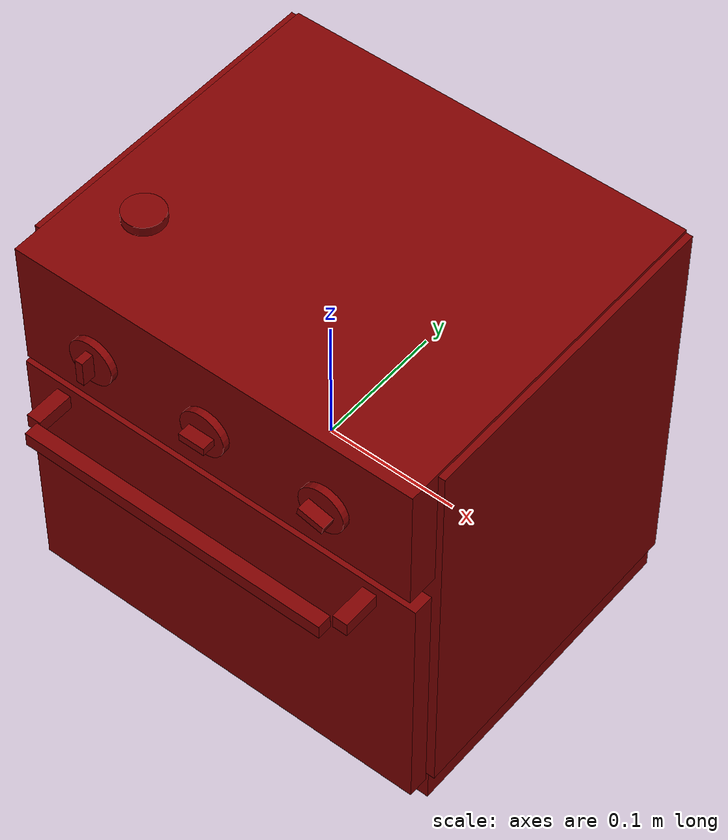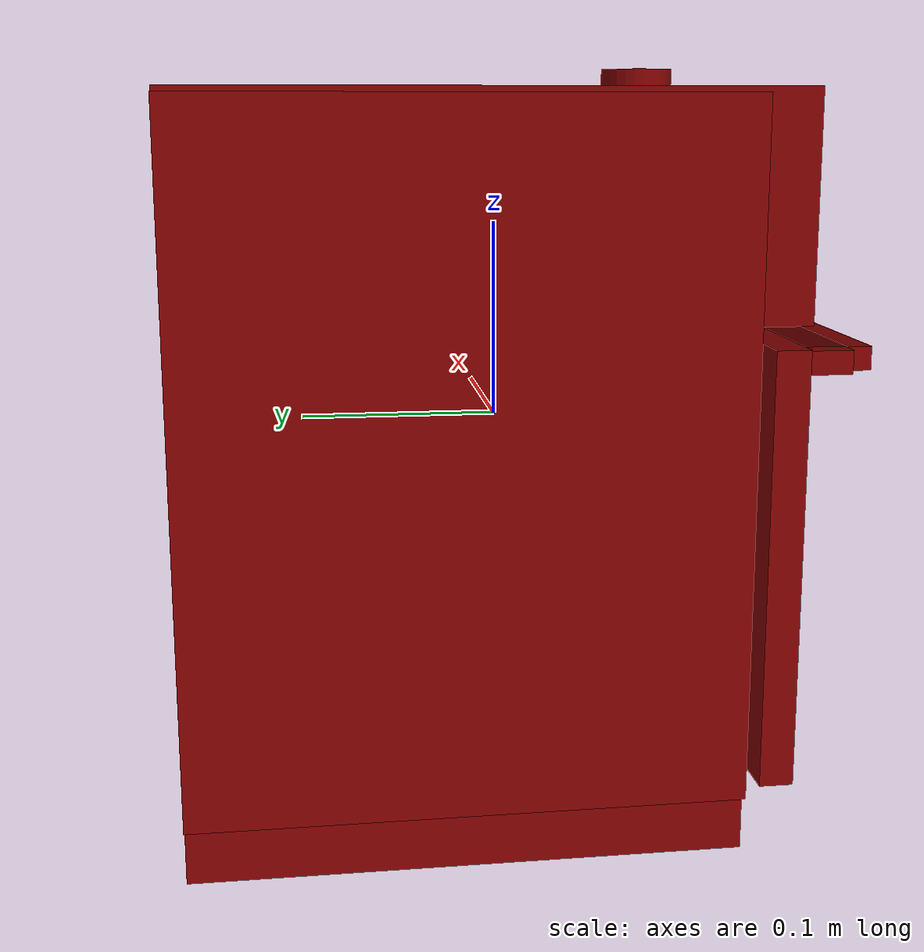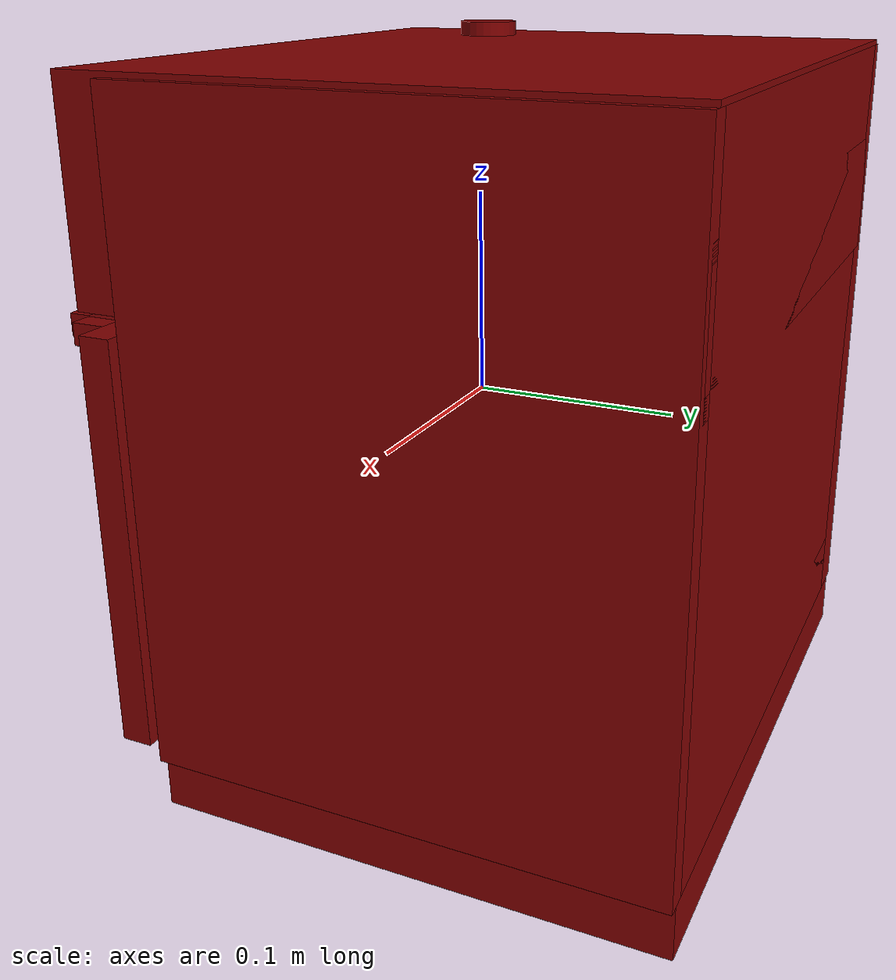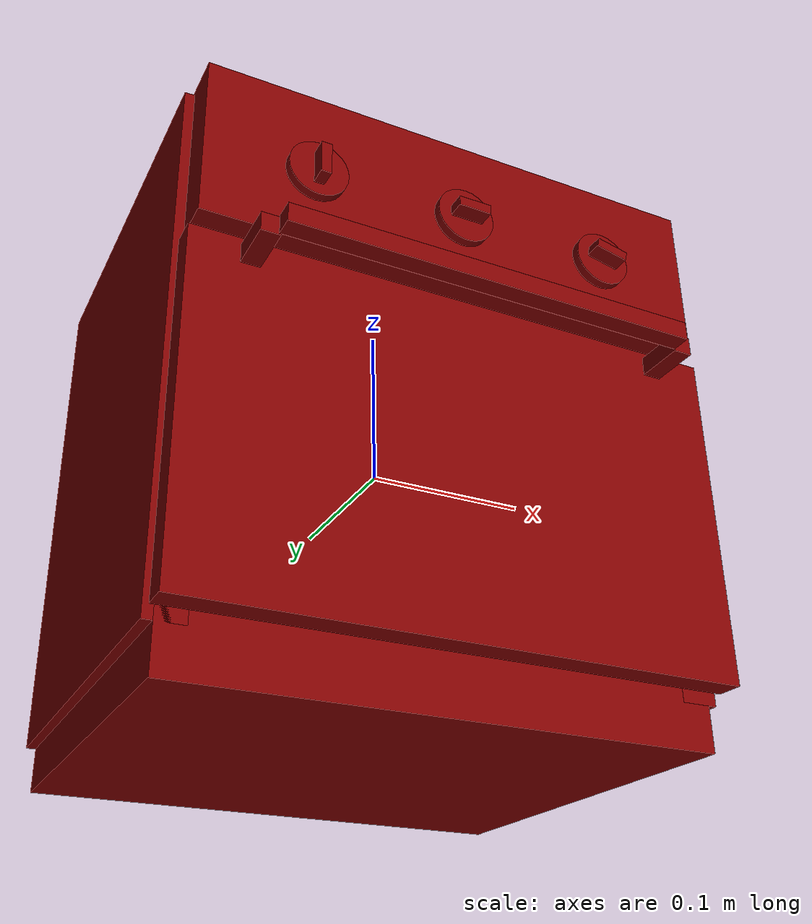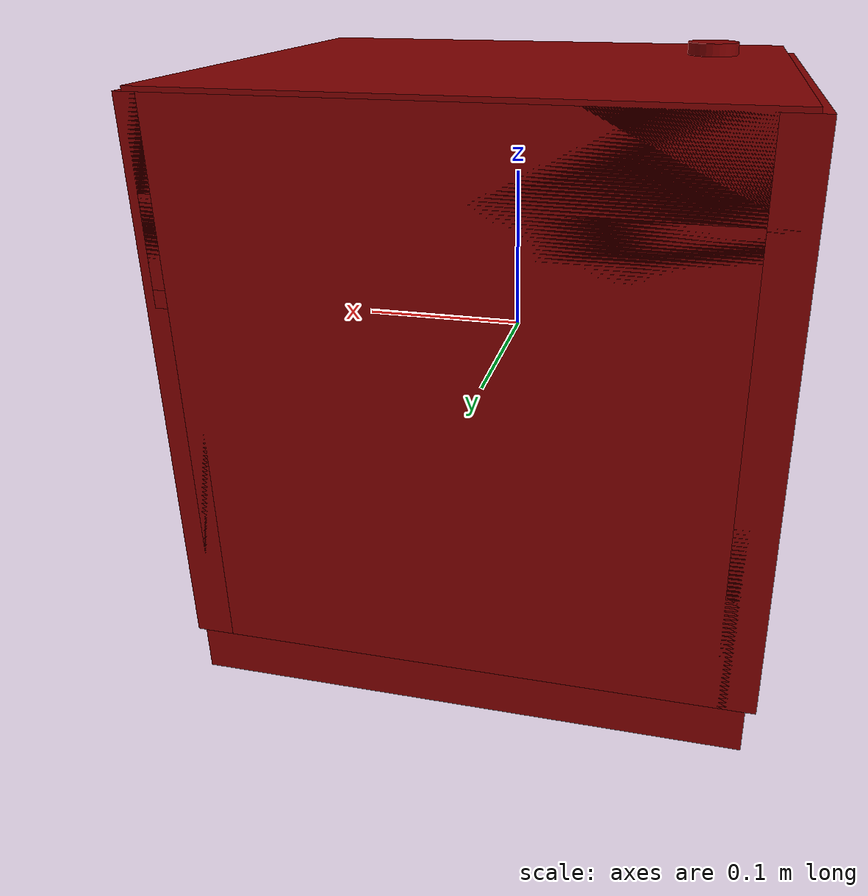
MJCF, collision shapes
<?xml version='1.0' encoding='UTF-8'?>
<mujoco model="model">
  <option timestep="0.002" gravity="0.0 0.0 -9.81"/>
  <compiler angle="radian"/>
  <asset>
    <mesh file="visuals/door.obj" name="door_vis"/>
    <mesh file="visuals/knob_function.obj" name="knob_function_vis"/>
    <mesh file="visuals/knob_temp.obj" name="knob_temp_vis"/>
    <mesh file="visuals/knob_time.obj" name="knob_time_vis"/>
    <mesh file="visuals/rack0.obj" name="rack0_vis"/>
    <mesh file="visuals/Body001.obj" name="Body001_vis"/>
    <mesh file="visuals/window.obj" name="window_vis"/>
    <texture file="visuals/T_BC001.png" name="Body001_material" type="2d"/>
    <material name="Body001_material" rgba="1 1 1 1.0" texture="Body001_material" shininess="0.4472135901451111" specular="1"/>
    <texture file="visuals/T_BC001.png" name="door_material" type="2d"/>
    <material name="door_material" rgba="1 1 1 1.0" texture="door_material" shininess="0.4472135901451111" specular="1"/>
    <texture file="visuals/T_BC001.png" name="window_material" type="2d"/>
    <material name="window_material" rgba="1 1 1 0.7874016165733337" texture="window_material" shininess="0.4472135901451111" specular="0.3103448502657381"/>
    <texture file="visuals/T_BC001.png" name="knob_function_material" type="2d"/>
    <material name="knob_function_material" rgba="1 1 1 1.0" texture="knob_function_material" shininess="0.4472135901451111" specular="0.3103448502657381"/>
    <texture file="visuals/T_BC001.png" name="knob_temp_material" type="2d"/>
    <material name="knob_temp_material" rgba="1 1 1 1.0" texture="knob_temp_material" shininess="0.4472135901451111" specular="0.3103448502657381"/>
    <texture file="visuals/T_BC001.png" name="knob_time_material" type="2d"/>
    <material name="knob_time_material" rgba="1 1 1 1.0" texture="knob_time_material" shininess="0.4472135901451111" specular="0.3103448502657381"/>
    <texture file="visuals/T_BC001.png" name="rack0_material" type="2d"/>
    <material name="rack0_material" rgba="1 1 1 1.0" texture="rack0_material" shininess="0.4472135901451111" specular="2"/>
  </asset>
  <default>
    <default class="visual">
      <geom conaffinity="0" contype="0" group="1" type="mesh"/>
    </default>
    <default class="collision">
      <geom group="0" rgba="0.5 0 0 0.5"/>
    </default>
    <default class="spawn">
      <geom group="0" rgba="1 1 1 0.5" contype="0" conaffinity="0"/>
      <site group="0" rgba="1 1 1 0.5"/>
    </default>
    <default class="region">
      <geom group="1" conaffinity="0" contype="0" rgba="0 1 0 0"/>
    </default>
  </default>
  <worldbody>
    <body>
      <body name="object">
        <geom mesh="Body001_vis" type="mesh" solimp="0.998 0.998 0.001" solref="0.001 1" friction="0.95 0.3 0.1" class="visual" material="Body001_material"/>
        <geom class="collision" type="box" pos="-0.15014806389808655 0.03225326165556908 0.007988776080310345" size="0.01095607504248619 0.12452957034111023 0.15582062304019928" quat="1.0 0.0 0.0 0.0"/>
        <geom class="collision" type="box" pos="0.15014807879924774 0.03225326165556908 0.007988776080310345" size="0.010956059210002422 0.12452957034111023 0.15582062304019928" quat="1.0 0.0 0.0 0.0"/>
        <geom class="collision" type="box" pos="0.00037354338564909995 0.03225326165556908 -0.14459064602851868" size="0.15582062304019928 0.12452957034111023 0.029636377468705177" quat="1.0 0.0 0.0 0.0"/>
        <geom class="collision" type="box" pos="0.0003735424834303558 0.02025252766907215 0.11629744619131088" size="0.15582062304019928 0.1365303099155426 0.05007728934288025" quat="1.0 0.0 0.0 0.0"/>
        <geom class="collision" type="box" pos="-0.003032587468624115 0.1421884149312973 0.007988776080310345" size="0.1524145007133484 0.014594434760510921 0.15582062304019928" quat="1.0 0.0 0.0 0.0"/>
        <geom class="collision" type="cylinder" pos="-0.1104695200920105 -0.04687829315662384 0.16864657402038574" size="0.015137218870222569 0.005071556195616722" quat="1.0 0.0 0.0 0.0"/>
        <geom class="collision" type="box" pos="0.00037354344385676086 0.03225326165556908 0.08603633940219879" size="0.15582062304019928 0.12452957034111023 0.02958161011338234" quat="1.0 0.0 0.0 0.0"/>
        <geom class="collision" type="box" pos="0.13413213193416595 0.030581790953874588 -0.034753818064928055" size="0.012300267815589905 0.0830044224858284 0.002318410435691476" quat="1.0 0.0 0.0 0.0"/>
        <geom class="collision" type="box" pos="-0.1335434913635254 0.030581790953874588 -0.034753818064928055" size="0.012300270609557629 0.08300444483757019 0.002318410901352763" quat="1.0 0.0 0.0 0.0"/>
        <body name="door">
          <joint axis="1.0 0.0 0.0" pos="-0.0002447452279739082 -0.09181776642799377 -0.14766952395439148" limited="true" name="door_joint" range="0.0 1.3707963267948966" type="hinge" damping="1" frictionloss="1" armature=".01" stiffness="1" springref="-1"/>
          <geom mesh="door_vis" type="mesh" solimp="0.998 0.998 0.001" solref="0.001 1" friction="0.95 0.3 0.1" class="visual" material="door_material"/>
          <geom class="collision" type="box" pos="-0.0002530446508899331 -0.10681606829166412 -0.04308674484491348" size="0.15938039124011993 0.007766919210553169 0.09968185424804688" quat="1.0 0.0 0.0 0.0" name="door_main"/>
          <geom class="collision" type="box" pos="-0.002028370974585414 -0.15088653564453125 0.0458734966814518" size="0.12011595070362091 0.005527830217033625 0.005527830217033625" quat="1.0 0.0 0.0 0.0" name="door_handle_main"/>
          <geom class="collision" type="box" pos="0.12467844784259796 -0.1301622986793518 0.0458734966814518" size="0.005527839530259371 0.01422300934791565 0.005527830217033625" quat="1.0 0.0 0.0 0.0"/>
          <geom class="collision" type="box" pos="-0.12602689862251282 -0.1301622986793518 0.0458734966814518" size="0.005527839530259371 0.01422300934791565 0.005527830217033625" quat="1.0 0.0 0.0 0.0"/>
          <body name="window">
            <geom mesh="window_vis" type="mesh" solimp="0.998 0.998 0.001" solref="0.001 1" friction="0.95 0.3 0.1" class="visual" material="window_material"/>
            <geom class="collision" type="box" pos="-6.950646638870239e-05 -0.10270194709300995 -0.03836246207356453" size="0.12502355873584747 0.0007287650369107723 0.06635313481092453" quat="1.0 0.0 0.0 0.0"/>
          </body>
        </body>
        <body name="knob_function">
          <joint axis="0.0 1.0 0.0" pos="0.09242938458919525 -0.1250920593738556 0.11093008518218994" limited="true" name="knob_function_joint" range="0.0 3.141592653589793" type="hinge" damping="0.05" armature="1" frictionloss="0.75"/>
          <geom mesh="knob_function_vis" type="mesh" solimp="0.998 0.998 0.001" solref="0.001 1" friction="0.95 0.3 0.1" class="visual" material="knob_function_material"/>
          <geom class="collision" type="cylinder" pos="0.09248964488506317 -0.1199907511472702 0.11097143590450287" size="0.01761051081120968 0.0027485794853419065" quat="0.7071067094802856 0.7071068286895752 0.0 0.0" friction="100 0.5 0.01"/>
          <geom class="collision" type="box" pos="0.0924294963479042 -0.12741884589195251 0.11086548119783401" size="0.0030167505610734224 0.005303218029439449 0.00994835700839758" quat="0.6227676868438721 0.0 0.7824068069458008 0.0" name="knob_function_main" friction="100 0.5 0.01"/>
        </body>
        <body name="knob_temp">
          <joint axis="0.0 1.0 0.0" pos="-0.0007955371984280646 -0.1250920593738556 0.11092999577522278" limited="true" name="knob_temp_joint" range="0.0 3.2288591161895095" type="hinge" damping="0.05" armature="1" frictionloss="0.75"/>
          <geom mesh="knob_temp_vis" type="mesh" solimp="0.998 0.998 0.001" solref="0.001 1" friction="0.95 0.3 0.1" class="visual" material="knob_temp_material"/>
          <geom class="collision" type="cylinder" pos="-0.0009866959881037474 -0.1199907511472702 0.11097143590450287" size="0.01761051081120968 0.0027485794853419065" quat="0.7071067094802856 0.7071068286895752 0.0 0.0" friction="100 0.5 0.01"/>
          <geom class="collision" type="box" pos="-0.000777900218963623 -0.12741884589195251 0.11086548119783401" size="0.009948354214429855 0.005303217098116875 0.0030167503282427788" quat="1.0 0.0 0.0 0.0" name="knob_temp_main" friction="100 0.5 0.01"/>
        </body>
        <body name="knob_time">
          <joint axis="0.0 1.0 0.0" pos="-0.091954305768013 -0.1250920593738556 0.11093045771121979" limited="true" name="knob_time_joint" range="0.0 4.014257279586958" type="hinge" damping="0.05" frictionloss="0.75" armature="1"/>
          <geom mesh="knob_time_vis" type="mesh" solimp="0.998 0.998 0.001" solref="0.001 1" friction="0.95 0.3 0.1" class="visual" material="knob_time_material"/>
          <geom class="collision" type="cylinder" pos="-0.09187865257263184 -0.1199907511472702 0.11097143590450287" size="0.01761051081120968 0.0027485794853419065" quat="0.7071067094802856 0.7071068286895752 0.0 0.0" friction="100 0.5 0.01"/>
          <geom class="collision" type="box" pos="-0.09196415543556213 -0.12741884589195251 0.1105961799621582" size="0.003016749396920204 0.0053032161667943 0.009948352351784706" quat="1.0 0.0 0.0 0.0" name="knob_time_main" friction="100 0.5 0.01"/>
        </body>
        <body name="rack0">
          <geom class="region" name="reg_rack0" type="box" pos="0.0007556155323982239 0.019857779145240784 0.010057561099529266" size="0.10514926707744598 0.09526365047693253 0.04629280960559845"/>
          <joint axis="0.0 -1.0 0.0" pos="0.007002250291407108 0.019703805446624756 -0.036553241312503815" limited="true" name="rack0_joint" range="0.0 0.17" type="slide" damping="1" frictionloss="1" armature=".01" stiffness="0.05"/>
          <geom mesh="rack0_vis" type="mesh" solimp="0.998 0.998 0.001" solref="0.001 1" friction="0.95 0.3 0.1" class="visual" material="rack0_material"/>
          <geom class="collision" type="box" pos="0.00039822518010623753 0.0192455742508173 -0.03828849270939827" size="0.10529593378305435 0.09590399265289307 0.002356566721573472" quat="1.0 0.0 0.0 0.0"/>
          <geom class="collision" type="box" pos="-0.11944076418876648 0.01918330043554306 -0.030751248821616173" size="0.006655312608927488 0.09602116793394089 0.0012939152074977756" quat="1.0 0.0 0.0 0.0"/>
          <geom class="collision" type="box" pos="-0.10865580290555954 0.019178202375769615 -0.03446810320019722" size="0.00665531400591135 0.09602617472410202 0.0012939026346430182" quat="0.9440328478813171 -2.0632491271044273e-08 0.3298514783382416 7.209132402152818e-09"/>
          <geom class="collision" type="box" pos="0.10940202325582504 0.019178202375769615 -0.03446810692548752" size="0.00665531400591135 0.09602617472410202 0.0012939037987962365" quat="7.127249546101666e-08 -0.9440328478813171 -2.4903092921135794e-08 -0.3298514783382416"/>
          <geom class="collision" type="box" pos="0.11957360059022903 0.01918330043554306 -0.030751248821616173" size="0.006655312608927488 0.09602116793394089 0.001293914276175201" quat="1.0 0.0 0.0 0.0"/>
        </body>
        <geom class="region" name="reg_main" type="box" pos="0.0 0.020252518355846405 -1.862645149230957e-08" size="0.16210414266586304 0.1375303248167038 0.1752270141839981"/>
      </body>
    </body>
  </worldbody>
  <actuator>
    <motor name="door_joint_actuator" joint="door_joint" gear="50"/>
    <motor name="knob_function_joint_actuator" joint="knob_function_joint" gear="50"/>
    <motor name="knob_temp_joint_actuator" joint="knob_temp_joint" gear="50"/>
    <motor name="knob_time_joint_actuator" joint="knob_time_joint" gear="50"/>
    <motor name="rack0_joint_actuator" joint="rack0_joint" gear="50"/>
  </actuator>
</mujoco>
